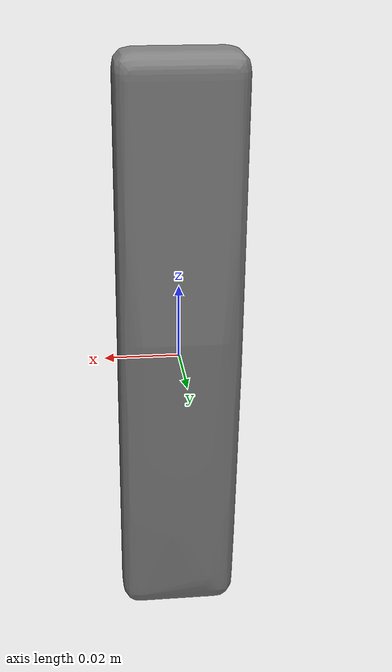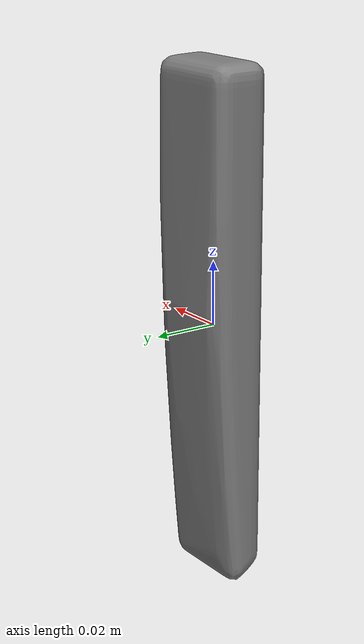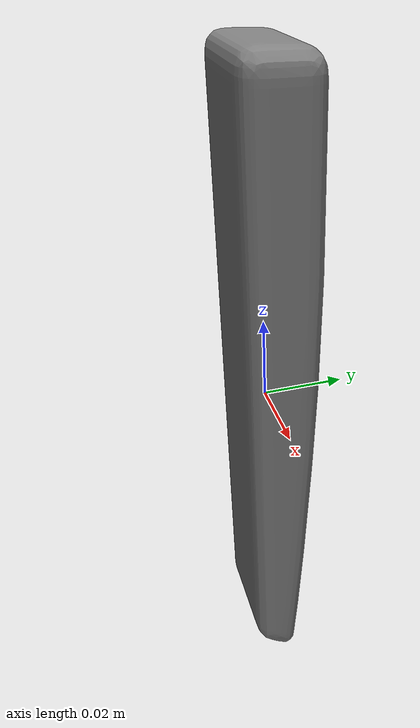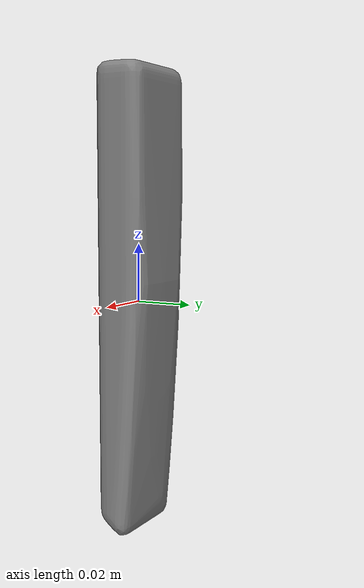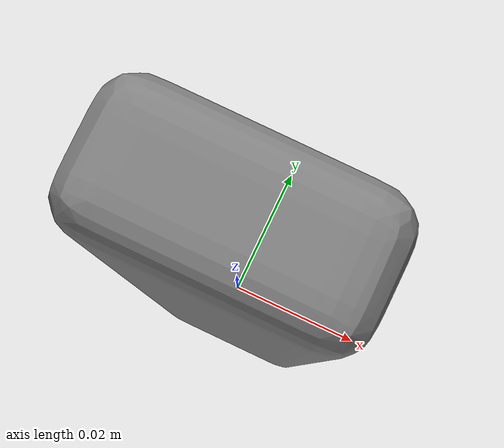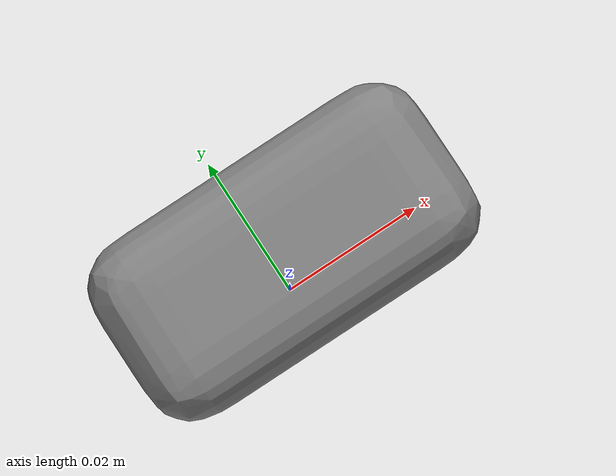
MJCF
<mujoco model="remote_control_35ac912c7dc14175ab8be82a2c5fe551">
  <default>
    <default class="visual">
      <geom type="mesh" contype="0" conaffinity="0" group="1"/>
    </default>
    <default class="collision">
      <geom type="mesh" condim="6" group="0"/>
    </default>
  </default>
  <asset>
    <texture type="2d" name="texture" file="material_0.png"/>
    <material name="Material.001" texture="texture" specular="0.5" shininess="0.25"/>
    <mesh file="visual_mesh.obj" name="visual_mesh"/>
    <mesh file="meshes/convex_piece_0.obj" name="convex_piece_0"/>
  </asset>
  <worldbody>
    <body>
    <body name="object">
      <geom material="Material.001" mesh="visual_mesh" class="visual"/>
      <geom mesh="convex_piece_0" class="collision"/>
    </body>
      <site rgba="0 0 0 0" size="0.005" pos="0 0 -0.04" name="bottom_site" />
      <site rgba="0 0 0 0" size="0.005" pos="0 0 0.04" name="top_site" />
      <site rgba="0 0 0 0" size="0.005" pos="0.005 0.005 0" name="horizontal_radius_site" />
    </body>
  </worldbody>
</mujoco>
